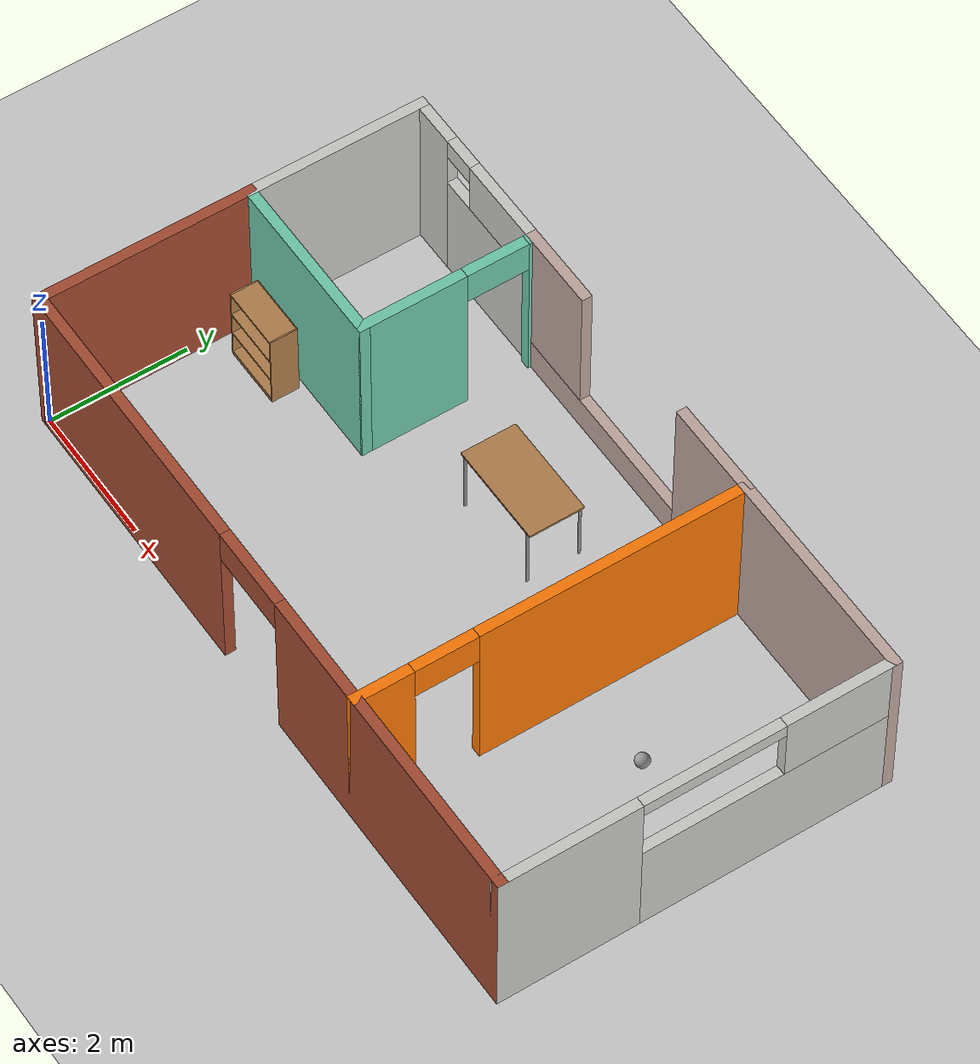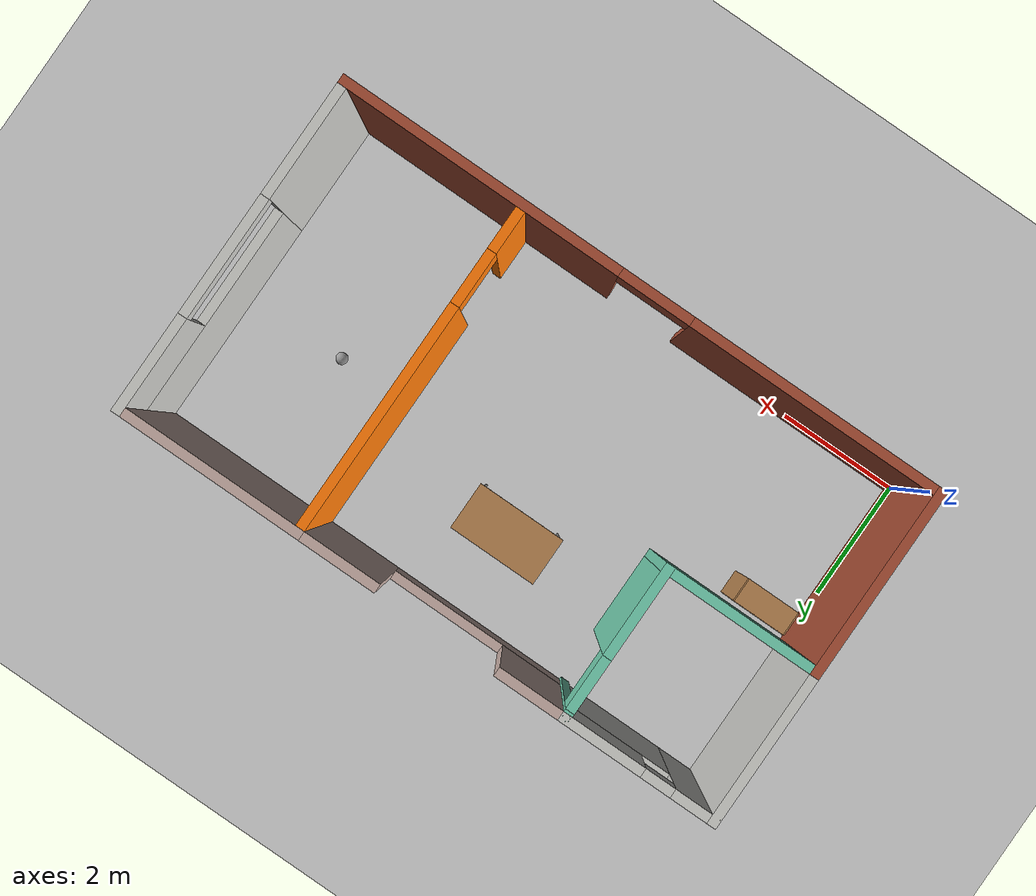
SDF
<sdf version="1.6">
 <world name="default">
  <light name="sun" type="directional">
   <pose>0 0 10 0 -0 0</pose>
   <diffuse>0.8 0.8 0.8 1</diffuse>
   <specular>0.2 0.2 0.2 1</specular>
   <attenuation>
    <range>1000</range>
    <constant>0.9</constant>
    <linear>0.01</linear>
    <quadratic>0.001</quadratic>
   </attenuation>
   <direction>-0.5 0.1 -0.9</direction>
  </light>
  <model name="ground_plane">
   <static>1</static>
   <link name="link">
    <collision name="collision">
     <geometry><plane><normal>0 0 1</normal><size>100 100</size></plane></geometry>
     <surface><friction><ode><mu>100</mu><mu2>50</mu2></ode></friction></surface>
    </collision>
    <visual name="visual">
     <cast_shadows>0</cast_shadows>
     <geometry><plane><normal>0 0 1</normal><size>100 100</size></plane></geometry>
     <material>
      <script><uri>file://media/materials/scripts/gazebo.material</uri><name>Gazebo/Grey</name></script>
     </material>
    </visual>
   </link>
  </model>
  <gravity>0 0 -9.8</gravity>
  <magnetic_field>6e-06 2.3e-05 -4.2e-05</magnetic_field>
  <atmosphere type="adiabatic"/>
  <physics name="default_physics" default="0" type="ode">
   <max_step_size>0.001</max_step_size>
   <real_time_factor>1</real_time_factor>
   <real_time_update_rate>1000</real_time_update_rate>
  </physics>
  <scene><ambient>0.4 0.4 0.4 1</ambient><background>0.7 0.7 0.7 1</background><shadows>1</shadows></scene>
  <spherical_coordinates>
   <surface_model>EARTH_WGS84</surface_model>
   <latitude_deg>0</latitude_deg>
   <longitude_deg>0</longitude_deg>
   <elevation>0</elevation>
   <heading_deg>0</heading_deg>
  </spherical_coordinates>
  <model name="casa">
   <pose>5 2.75 0 0 -0 0</pose>
   <link name="Wall_29">
    <collision name="Wall_29_Collision">
     <geometry><box><size>3.15 0.15 2.5</size></box></geometry>
     <pose>0 0 1.25 0 -0 0</pose>
    </collision>
    <visual name="Wall_29_Visual">
     <pose>0 0 1.25 0 -0 0</pose>
     <geometry><box><size>3.15 0.15 2.5</size></box></geometry>
     <material>
      <script><uri>file://media/materials/scripts/gazebo.material</uri><name>Gazebo/Bricks</name></script>
      <ambient>1 1 1 1</ambient>
     </material>
     <meta><layer>0</layer></meta>
    </visual>
    <pose>-5 -1.25 0 0 -0 1.5708</pose>
   </link>
   <link name="Wall_31">
    <collision name="Wall_31_Collision">
     <geometry><box><size>2.65 0.15 2.5</size></box></geometry>
     <pose>0 0 1.25 0 -0 0</pose>
    </collision>
    <visual name="Wall_31_Visual">
     <pose>0 0 1.25 0 -0 0</pose>
     <geometry><box><size>2.65 0.15 2.5</size></box></geometry>
     <material>
      <script><uri>file://media/materials/scripts/gazebo.material</uri><name>Gazebo/CeilingTiled</name></script>
      <ambient>1 1 1 1</ambient>
     </material>
     <meta><layer>0</layer></meta>
    </visual>
    <pose>-5 1.5 0 0 -0 1.5708</pose>
   </link>
   <link name="Wall_33">
    <pose>-3.75 2.75 0 0 -0 0</pose>
    <visual name="Wall_33_Visual_0">
     <pose>-0.942604 0 1.25 0 -0 0</pose>
     <geometry><box><size>0.764791 0.15 2.5</size></box></geometry>
     <material>
      <script><uri>file://media/materials/scripts/gazebo.material</uri><name>Gazebo/CeilingTiled</name></script>
      <ambient>1 1 1 1</ambient>
     </material>
     <meta><layer>0</layer></meta>
    </visual>
    <collision name="Wall_33_Collision_0">
     <geometry><box><size>0.764791 0.15 2.5</size></box></geometry>
     <pose>-0.942604 0 1.25 0 -0 0</pose>
    </collision>
    <visual name="Wall_33_Visual_1">
     <pose>0.382396 0 0.85 0 -0 0</pose>
     <geometry><box><size>1.88521 0.15 1.7</size></box></geometry>
     <material>
      <script><uri>file://media/materials/scripts/gazebo.material</uri><name>Gazebo/CeilingTiled</name></script>
      <ambient>1 1 1 1</ambient>
     </material>
     <meta><layer>0</layer></meta>
    </visual>
    <collision name="Wall_33_Collision_1">
     <geometry><box><size>1.88521 0.15 1.7</size></box></geometry>
     <pose>0.382396 0 0.85 0 -0 0</pose>
    </collision>
    <visual name="Wall_33_Visual_2">
     <pose>0.632396 0 2.1 0 -0 0</pose>
     <geometry><box><size>1.38521 0.15 0.8</size></box></geometry>
     <material>
      <script><uri>file://media/materials/scripts/gazebo.material</uri><name>Gazebo/CeilingTiled</name></script>
      <ambient>1 1 1 1</ambient>
     </material>
     <meta><layer>0</layer></meta>
    </visual>
    <collision name="Wall_33_Collision_2">
     <geometry><box><size>1.38521 0.15 0.8</size></box></geometry>
     <pose>0.632396 0 2.1 0 -0 0</pose>
    </collision>
    <visual name="Wall_33_Visual_3">
     <pose>-0.310209 0 2.35 0 -0 0</pose>
     <geometry><box><size>0.5 0.15 0.3</size></box></geometry>
     <material>
      <script><uri>file://media/materials/scripts/gazebo.material</uri><name>Gazebo/CeilingTiled</name></script>
      <ambient>1 1 1 1</ambient>
     </material>
     <meta><layer>0</layer></meta>
    </visual>
    <collision name="Wall_33_Collision_3">
     <geometry><box><size>0.5 0.15 0.3</size></box></geometry>
     <pose>-0.310209 0 2.35 0 -0 0</pose>
    </collision>
   </link>
   <link name="Wall_35">
    <pose>-2.5 1.5 0 0 0 -1.5708</pose>
    <visual name="Wall_35_Visual_0">
     <pose>-1.22797 0 1.25 0 -0 0</pose>
     <geometry><box><size>0.194069 0.15 2.5</size></box></geometry>
     <material>
      <script><uri>file://media/materials/scripts/gazebo.material</uri><name>Gazebo/Grey</name></script>
      <ambient>0.435294 0.796078 0.67451 1</ambient>
     </material>
     <meta><layer>0</layer></meta>
    </visual>
    <collision name="Wall_35_Collision_0">
     <geometry><box><size>0.194069 0.15 2.5</size></box></geometry>
     <pose>-1.22797 0 1.25 0 -0 0</pose>
    </collision>
    <visual name="Wall_35_Visual_1">
     <pose>0.547034 0 1.25 0 -0 0</pose>
     <geometry><box><size>1.55593 0.15 2.5</size></box></geometry>
     <material>
      <script><uri>file://media/materials/scripts/gazebo.material</uri><name>Gazebo/Grey</name></script>
      <ambient>0.435294 0.796078 0.67451 1</ambient>
     </material>
     <meta><layer>0</layer></meta>
    </visual>
    <collision name="Wall_35_Collision_1">
     <geometry><box><size>1.55593 0.15 2.5</size></box></geometry>
     <pose>0.547034 0 1.25 0 -0 0</pose>
    </collision>
    <visual name="Wall_35_Visual_2">
     <pose>-0.680931 0 2.25 0 -0 0</pose>
     <geometry><box><size>0.9 0.15 0.5</size></box></geometry>
     <material>
      <script><uri>file://media/materials/scripts/gazebo.material</uri><name>Gazebo/Grey</name></script>
      <ambient>0.435294 0.796078 0.67451 1</ambient>
     </material>
     <meta><layer>0</layer></meta>
    </visual>
    <collision name="Wall_35_Collision_2">
     <geometry><box><size>0.9 0.15 0.5</size></box></geometry>
     <pose>-0.680931 0 2.25 0 -0 0</pose>
    </collision>
   </link>
   <link name="Wall_37">
    <collision name="Wall_37_Collision">
     <geometry><box><size>2.65 0.15 2.5</size></box></geometry>
     <pose>0 0 1.25 0 -0 0</pose>
    </collision>
    <visual name="Wall_37_Visual">
     <pose>0 0 1.25 0 -0 0</pose>
     <geometry><box><size>2.65 0.15 2.5</size></box></geometry>
     <material>
      <script><uri>file://media/materials/scripts/gazebo.material</uri><name>Gazebo/Grey</name></script>
      <ambient>0.435294 0.796078 0.67451 1</ambient>
     </material>
     <meta><layer>0</layer></meta>
    </visual>
    <pose>-3.75 0.25 0 0 -0 0</pose>
   </link>
   <link name="Wall_39">
    <pose>0 -2.75 0 0 -0 0</pose>
    <visual name="Wall_39_Visual_0">
     <pose>-2.95244 0 1.25 0 -0 0</pose>
     <geometry><box><size>4.24512 0.15 2.5</size></box></geometry>
     <material>
      <script><uri>file://media/materials/scripts/gazebo.material</uri><name>Gazebo/Bricks</name></script>
      <ambient>1 1 1 1</ambient>
     </material>
     <meta><layer>0</layer></meta>
    </visual>
    <collision name="Wall_39_Collision_0">
     <geometry><box><size>4.24512 0.15 2.5</size></box></geometry>
     <pose>-2.95244 0 1.25 0 -0 0</pose>
    </collision>
    <visual name="Wall_39_Visual_1">
     <pose>2.72256 0 1.25 0 -0 0</pose>
     <geometry><box><size>4.70488 0.15 2.5</size></box></geometry>
     <material>
      <script><uri>file://media/materials/scripts/gazebo.material</uri><name>Gazebo/Bricks</name></script>
      <ambient>1 1 1 1</ambient>
     </material>
     <meta><layer>0</layer></meta>
    </visual>
    <collision name="Wall_39_Collision_1">
     <geometry><box><size>4.70488 0.15 2.5</size></box></geometry>
     <pose>2.72256 0 1.25 0 -0 0</pose>
    </collision>
    <visual name="Wall_39_Visual_2">
     <pose>-0.229885 0 2.25 0 -0 0</pose>
     <geometry><box><size>1.2 0.15 0.5</size></box></geometry>
     <material>
      <script><uri>file://media/materials/scripts/gazebo.material</uri><name>Gazebo/Bricks</name></script>
      <ambient>1 1 1 1</ambient>
     </material>
     <meta><layer>0</layer></meta>
    </visual>
    <collision name="Wall_39_Collision_2">
     <geometry><box><size>1.2 0.15 0.5</size></box></geometry>
     <pose>-0.229885 0 2.25 0 -0 0</pose>
    </collision>
   </link>
   <link name="Wall_41">
    <pose>5 0 0 0 -0 1.5708</pose>
    <visual name="Wall_41_Visual_0">
     <pose>-1.81897 0 1.25 0 -0 0</pose>
     <geometry><box><size>2.01206 0.15 2.5</size></box></geometry>
     <material>
      <script><uri>file://media/materials/scripts/gazebo.material</uri><name>Gazebo/CeilingTiled</name></script>
      <ambient>1 1 1 1</ambient>
     </material>
     <meta><layer>0</layer></meta>
    </visual>
    <collision name="Wall_41_Collision_0">
     <geometry><box><size>2.01206 0.15 2.5</size></box></geometry>
     <pose>-1.81897 0 1.25 0 -0 0</pose>
    </collision>
    <visual name="Wall_41_Visual_1">
     <pose>1.00603 0 0.75 0 -0 0</pose>
     <geometry><box><size>3.63794 0.15 1.5</size></box></geometry>
     <material>
      <script><uri>file://media/materials/scripts/gazebo.material</uri><name>Gazebo/CeilingTiled</name></script>
      <ambient>1 1 1 1</ambient>
     </material>
     <meta><layer>0</layer></meta>
    </visual>
    <collision name="Wall_41_Collision_1">
     <geometry><box><size>3.63794 0.15 1.5</size></box></geometry>
     <pose>1.00603 0 0.75 0 -0 0</pose>
    </collision>
    <visual name="Wall_41_Visual_2">
     <pose>2.00603 0 2 0 -0 0</pose>
     <geometry><box><size>1.63794 0.15 1</size></box></geometry>
     <material>
      <script><uri>file://media/materials/scripts/gazebo.material</uri><name>Gazebo/CeilingTiled</name></script>
      <ambient>1 1 1 1</ambient>
     </material>
     <meta><layer>0</layer></meta>
    </visual>
    <collision name="Wall_41_Collision_2">
     <geometry><box><size>1.63794 0.15 1</size></box></geometry>
     <pose>2.00603 0 2 0 -0 0</pose>
    </collision>
    <visual name="Wall_41_Visual_3">
     <pose>0.187064 0 2.4 0 -0 0</pose>
     <geometry><box><size>2 0.15 0.2</size></box></geometry>
     <material>
      <script><uri>file://media/materials/scripts/gazebo.material</uri><name>Gazebo/CeilingTiled</name></script>
      <ambient>1 1 1 1</ambient>
     </material>
     <meta><layer>0</layer></meta>
    </visual>
    <collision name="Wall_41_Collision_3">
     <geometry><box><size>2 0.15 0.2</size></box></geometry>
     <pose>0.187064 0 2.4 0 -0 0</pose>
    </collision>
   </link>
   <link name="Wall_43">
    <collision name="Wall_43_Collision">
     <geometry><box><size>3.15 0.15 2.5</size></box></geometry>
     <pose>0 0 1.25 0 -0 0</pose>
    </collision>
    <visual name="Wall_43_Visual">
     <pose>0 0 1.25 0 -0 0</pose>
     <geometry><box><size>3.15 0.15 2.5</size></box></geometry>
     <material>
      <script><uri>file://media/materials/scripts/gazebo.material</uri><name>Gazebo/Grey</name></script>
      <ambient>0.760784 0.662745 0.627451 1</ambient>
     </material>
     <meta><layer>0</layer></meta>
    </visual>
    <pose>3.5 2.75 0 0 -0 3.14159</pose>
   </link>
   <link name="Wall_45">
    <pose>-0.25 2.75 0 0 -0 3.14159</pose>
    <visual name="Wall_45_Visual_0">
     <pose>-1.61134 0 1.25 0 -0 0</pose>
     <geometry><box><size>1.42731 0.15 2.5</size></box></geometry>
     <material>
      <script><uri>file://media/materials/scripts/gazebo.material</uri><name>Gazebo/Grey</name></script>
      <ambient>0.760784 0.662745 0.627451 1</ambient>
     </material>
     <meta><layer>0</layer></meta>
    </visual>
    <collision name="Wall_45_Collision_0">
     <geometry><box><size>1.42731 0.15 2.5</size></box></geometry>
     <pose>-1.61134 0 1.25 0 -0 0</pose>
    </collision>
    <visual name="Wall_45_Visual_1">
     <pose>0.713658 0 0.25 0 -0 0</pose>
     <geometry><box><size>3.22268 0.15 0.5</size></box></geometry>
     <material>
      <script><uri>file://media/materials/scripts/gazebo.material</uri><name>Gazebo/Grey</name></script>
      <ambient>0.760784 0.662745 0.627451 1</ambient>
     </material>
     <meta><layer>0</layer></meta>
    </visual>
    <collision name="Wall_45_Collision_1">
     <geometry><box><size>3.22268 0.15 0.5</size></box></geometry>
     <pose>0.713658 0 0.25 0 -0 0</pose>
    </collision>
    <visual name="Wall_45_Visual_2">
     <pose>1.71366 0 1.5 0 -0 0</pose>
     <geometry><box><size>1.22269 0.15 2</size></box></geometry>
     <material>
      <script><uri>file://media/materials/scripts/gazebo.material</uri><name>Gazebo/Grey</name></script>
      <ambient>0.760784 0.662745 0.627451 1</ambient>
     </material>
     <meta><layer>0</layer></meta>
    </visual>
    <collision name="Wall_45_Collision_2">
     <geometry><box><size>1.22269 0.15 2</size></box></geometry>
     <pose>1.71366 0 1.5 0 -0 0</pose>
    </collision>
   </link>
   <link name="Wall_48">
    <pose>2 0 0 0 -0 1.5708</pose>
    <visual name="Wall_48_Visual_0">
     <pose>-2.40098 0 1.25 0 -0 0</pose>
     <geometry><box><size>0.848038 0.15 2.5</size></box></geometry>
     <material>
      <script><uri>file://media/materials/scripts/gazebo.material</uri><name>Gazebo/Grey</name></script>
      <ambient>0.996078 0.47451 0.0196078 1</ambient>
     </material>
     <meta><layer>0</layer></meta>
    </visual>
    <collision name="Wall_48_Collision_0">
     <geometry><box><size>0.848038 0.15 2.5</size></box></geometry>
     <pose>-2.40098 0 1.25 0 -0 0</pose>
    </collision>
    <visual name="Wall_48_Visual_1">
     <pose>0.874019 0 1.25 0 -0 0</pose>
     <geometry><box><size>3.90196 0.15 2.5</size></box></geometry>
     <material>
      <script><uri>file://media/materials/scripts/gazebo.material</uri><name>Gazebo/Grey</name></script>
      <ambient>0.996078 0.47451 0.0196078 1</ambient>
     </material>
     <meta><layer>0</layer></meta>
    </visual>
    <collision name="Wall_48_Collision_1">
     <geometry><box><size>3.90196 0.15 2.5</size></box></geometry>
     <pose>0.874019 0 1.25 0 -0 0</pose>
    </collision>
    <visual name="Wall_48_Visual_2">
     <pose>-1.52696 0 2.25 0 -0 0</pose>
     <geometry><box><size>0.9 0.15 0.5</size></box></geometry>
     <material>
      <script><uri>file://media/materials/scripts/gazebo.material</uri><name>Gazebo/Grey</name></script>
      <ambient>0.996078 0.47451 0.0196078 1</ambient>
     </material>
     <meta><layer>0</layer></meta>
    </visual>
    <collision name="Wall_48_Collision_2">
     <geometry><box><size>0.9 0.15 0.5</size></box></geometry>
     <pose>-1.52696 0 2.25 0 -0 0</pose>
    </collision>
   </link>
   <static>1</static>
  </model>
  <model name="bookshelf">
   <static>1</static>
   <link name="link">
    <inertial><mass>1</mass></inertial>
    <collision name="back">
     <pose>0 0.005 0.6 0 -0 0</pose>
     <geometry><box><size>0.9 0.01 1.2</size></box></geometry>
    </collision>
    <visual name="visual1">
     <pose>0 0.005 0.6 0 -0 0</pose>
     <geometry><box><size>0.9 0.01 1.2</size></box></geometry>
     <material>
      <script><uri>file://media/materials/scripts/gazebo.material</uri><name>Gazebo/Wood</name></script>
     </material>
    </visual>
    <collision name="left_side">
     <pose>0.45 -0.195 0.6 0 -0 0</pose>
     <geometry><box><size>0.02 0.4 1.2</size></box></geometry>
    </collision>
    <visual name="visual2">
     <pose>0.45 -0.195 0.6 0 -0 0</pose>
     <geometry><box><size>0.02 0.4 1.2</size></box></geometry>
     <material>
      <script><uri>file://media/materials/scripts/gazebo.material</uri><name>Gazebo/Wood</name></script>
     </material>
    </visual>
    <collision name="right_side">
     <pose>-0.45 -0.195 0.6 0 -0 0</pose>
     <geometry><box><size>0.02 0.4 1.2</size></box></geometry>
    </collision>
    <visual name="visual3">
     <pose>-0.45 -0.195 0.6 0 -0 0</pose>
     <geometry><box><size>0.02 0.4 1.2</size></box></geometry>
     <material>
      <script><uri>file://media/materials/scripts/gazebo.material</uri><name>Gazebo/Wood</name></script>
     </material>
    </visual>
    <collision name="bottom">
     <pose>0 -0.195 0.03 0 -0 0</pose>
     <geometry><box><size>0.88 0.4 0.06</size></box></geometry>
    </collision>
    <visual name="visual4">
     <pose>0 -0.195 0.03 0 -0 0</pose>
     <geometry><box><size>0.88 0.4 0.06</size></box></geometry>
     <material>
      <script><uri>file://media/materials/scripts/gazebo.material</uri><name>Gazebo/Wood</name></script>
     </material>
    </visual>
    <collision name="top">
     <pose>0 -0.195 1.19 0 -0 0</pose>
     <geometry><box><size>0.88 0.4 0.02</size></box></geometry>
    </collision>
    <visual name="visual5">
     <pose>0 -0.195 1.19 0 -0 0</pose>
     <geometry><box><size>0.88 0.4 0.02</size></box></geometry>
     <material>
      <script><uri>file://media/materials/scripts/gazebo.material</uri><name>Gazebo/Wood</name></script>
     </material>
    </visual>
    <collision name="low_shelf">
     <pose>0 -0.195 0.43 0 -0 0</pose>
     <geometry><box><size>0.88 0.4 0.02</size></box></geometry>
    </collision>
    <visual name="visual6">
     <pose>0 -0.195 0.43 0 -0 0</pose>
     <geometry><box><size>0.88 0.4 0.02</size></box></geometry>
     <material>
      <script><uri>file://media/materials/scripts/gazebo.material</uri><name>Gazebo/Wood</name></script>
     </material>
    </visual>
    <collision name="high_shelf">
     <pose>0 -0.195 0.8 0 -0 0</pose>
     <geometry><box><size>0.88 0.4 0.02</size></box></geometry>
    </collision>
    <visual name="visual7">
     <pose>0 -0.195 0.8 0 -0 0</pose>
     <geometry><box><size>0.88 0.4 0.02</size></box></geometry>
     <material>
      <script><uri>file://media/materials/scripts/gazebo.material</uri><name>Gazebo/Wood</name></script>
     </material>
    </visual>
   </link>
   <pose>0.80647 2.84025 0 0 -0 0</pose>
  </model>
  <model name="table">
   <static>1</static>
   <link name="link">
    <collision name="surface">
     <pose>0 0 1 0 -0 0</pose>
     <geometry><box><size>1.5 0.8 0.03</size></box></geometry>
     <surface><friction><ode><mu>0.6</mu><mu2>0.6</mu2></ode></friction></surface>
    </collision>
    <visual name="visual1">
     <pose>0 0 1 0 -0 0</pose>
     <geometry><box><size>1.5 0.8 0.03</size></box></geometry>
     <material>
      <script><uri>file://media/materials/scripts/gazebo.material</uri><name>Gazebo/Wood</name></script>
     </material>
    </visual>
    <collision name="front_left_leg">
     <pose>0.68 0.38 0.5 0 -0 0</pose>
     <geometry><cylinder><radius>0.02</radius><length>1</length></cylinder></geometry>
    </collision>
    <visual name="front_left_leg">
     <pose>0.68 0.38 0.5 0 -0 0</pose>
     <geometry><cylinder><radius>0.02</radius><length>1</length></cylinder></geometry>
     <material>
      <script><uri>file://media/materials/scripts/gazebo.material</uri><name>Gazebo/Grey</name></script>
     </material>
    </visual>
    <collision name="front_right_leg">
     <pose>0.68 -0.38 0.5 0 -0 0</pose>
     <geometry><cylinder><radius>0.02</radius><length>1</length></cylinder></geometry>
    </collision>
    <visual name="front_right_leg">
     <pose>0.68 -0.38 0.5 0 -0 0</pose>
     <geometry><cylinder><radius>0.02</radius><length>1</length></cylinder></geometry>
     <material>
      <script><uri>file://media/materials/scripts/gazebo.material</uri><name>Gazebo/Grey</name></script>
     </material>
    </visual>
    <collision name="back_right_leg">
     <pose>-0.68 -0.38 0.5 0 -0 0</pose>
     <geometry><cylinder><radius>0.02</radius><length>1</length></cylinder></geometry>
    </collision>
    <visual name="back_right_leg">
     <pose>-0.68 -0.38 0.5 0 -0 0</pose>
     <geometry><cylinder><radius>0.02</radius><length>1</length></cylinder></geometry>
     <material>
      <script><uri>file://media/materials/scripts/gazebo.material</uri><name>Gazebo/Grey</name></script>
     </material>
    </visual>
    <collision name="back_left_leg">
     <pose>-0.68 0.38 0.5 0 -0 0</pose>
     <geometry><cylinder><radius>0.02</radius><length>1</length></cylinder></geometry>
    </collision>
    <visual name="back_left_leg">
     <pose>-0.68 0.38 0.5 0 -0 0</pose>
     <geometry><cylinder><radius>0.02</radius><length>1</length></cylinder></geometry>
     <material>
      <script><uri>file://media/materials/scripts/gazebo.material</uri><name>Gazebo/Grey</name></script>
     </material>
    </visual>
   </link>
   <pose>4.5763 3.95533 0 0 -0 0</pose>
  </model>
  <model name="my_ball">
   <link name="link_0">
    <inertial>
     <mass>1</mass>
     <inertia><ixx>0.1</ixx><ixy>0</ixy><ixz>0</ixz><iyy>0.1</iyy><iyz>0</iyz><izz>0.1</izz></inertia>
    </inertial>
    <visual name="visual">
     <geometry><sphere><radius>0.1</radius></sphere></geometry>
     <material>
      <lighting>1</lighting>
      <script><uri>file://media/materials/scripts/gazebo.material</uri><name>Gazebo/Grey</name></script>
      <shader type="pixel"><normal_map>__default__</normal_map></shader>
      <ambient>1 1 1 1</ambient>
      <diffuse>1 1 1 1</diffuse>
      <specular>1 1 1 1</specular>
      <emissive>0 0 0 1</emissive>
     </material>
    </visual>
    <collision name="collision">
     <geometry><sphere><radius>0.1</radius></sphere></geometry>
     <surface>
      <friction>
       <ode><mu>1</mu><mu2>1</mu2><fdir1>0 0 0</fdir1><slip1>0</slip1><slip2>0</slip2></ode>
       <torsional>
        <coefficient>1</coefficient>
        <patch_radius>0</patch_radius>
        <surface_radius>0</surface_radius>
        <use_patch_radius>1</use_patch_radius>
        <ode><slip>0</slip></ode>
       </torsional>
      </friction>
      <bounce><restitution_coefficient>0</restitution_coefficient><threshold>1e+06</threshold></bounce>
      <contact>
       <collide_without_contact>0</collide_without_contact>
       <collide_without_contact_bitmask>1</collide_without_contact_bitmask>
       <collide_bitmask>1</collide_bitmask>
       <ode>
        <soft_cfm>0</soft_cfm>
        <soft_erp>0.2</soft_erp>
        <kp>1e+13</kp>
        <kd>1</kd>
        <max_vel>0.01</max_vel>
        <min_depth>0</min_depth>
       </ode>
       <bullet>
        <split_impulse>1</split_impulse>
        <split_impulse_penetration_threshold>-0.01</split_impulse_penetration_threshold>
        <soft_cfm>0</soft_cfm>
        <soft_erp>0.2</soft_erp>
        <kp>1e+13</kp>
        <kd>1</kd>
       </bullet>
      </contact>
     </surface>
    </collision>
   </link>
   <static>0</static>
   <pose>8.24873 3.22459 0.1 0 -0 0</pose>
  </model>
 </world>
</sdf>
